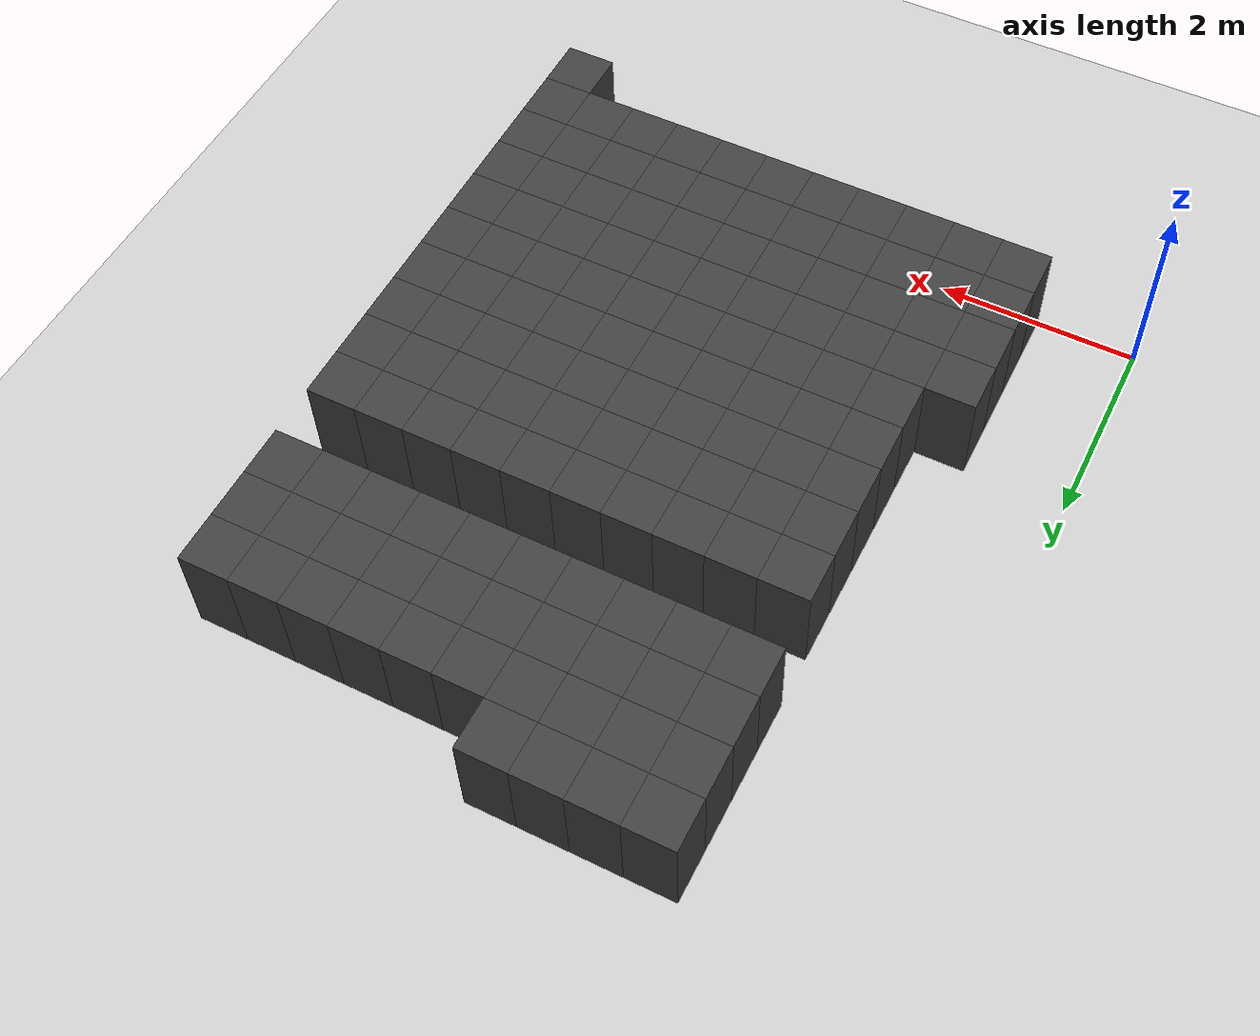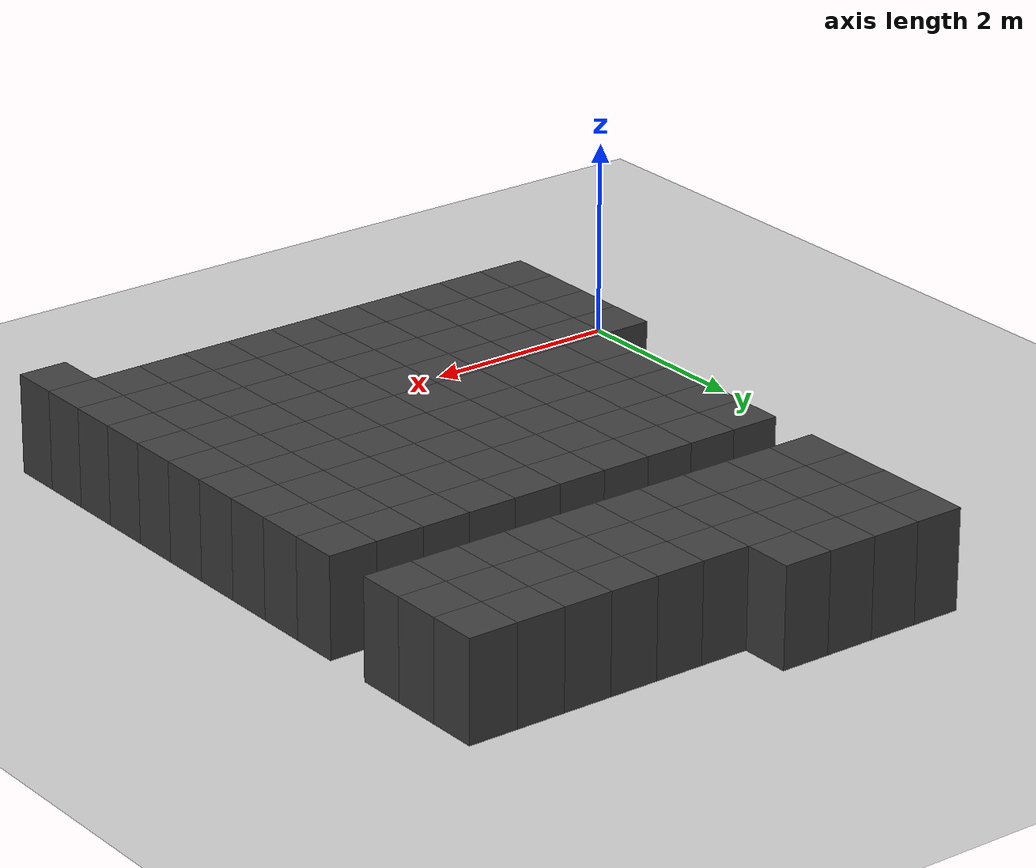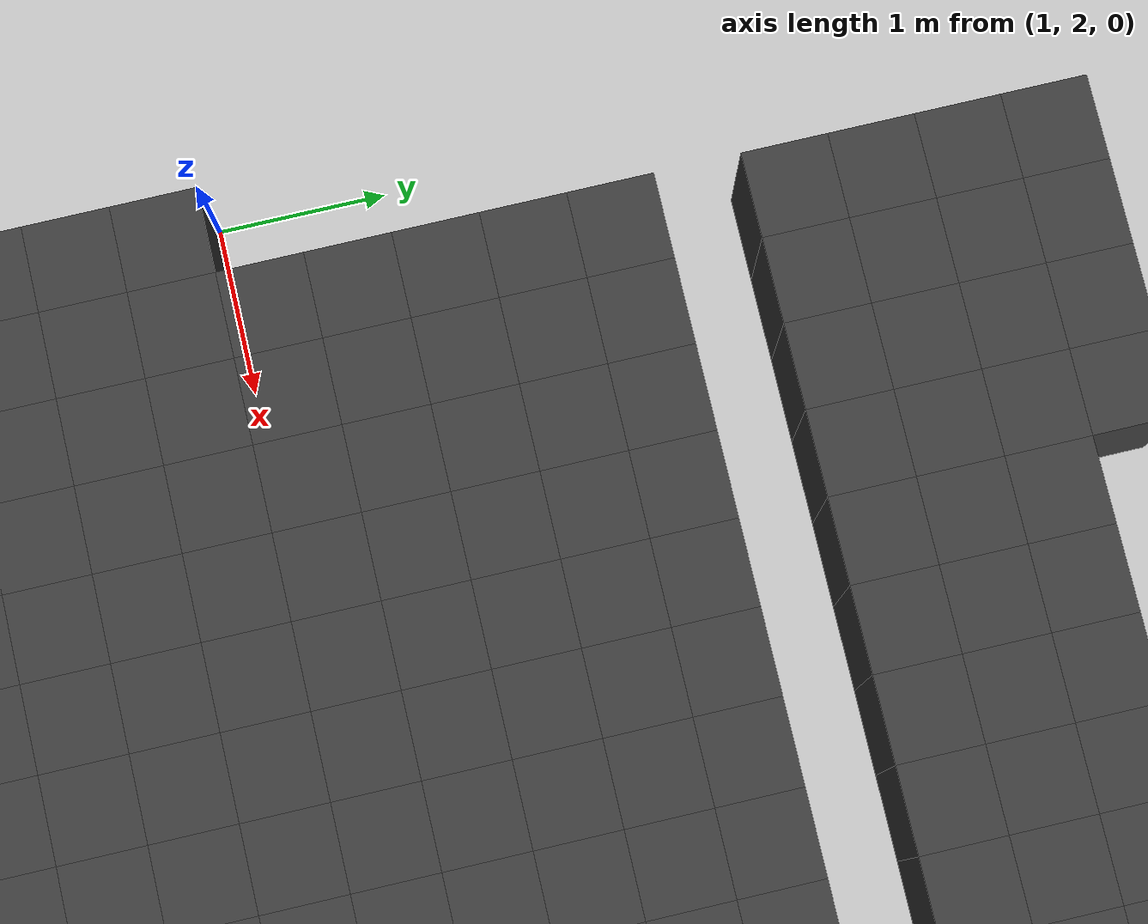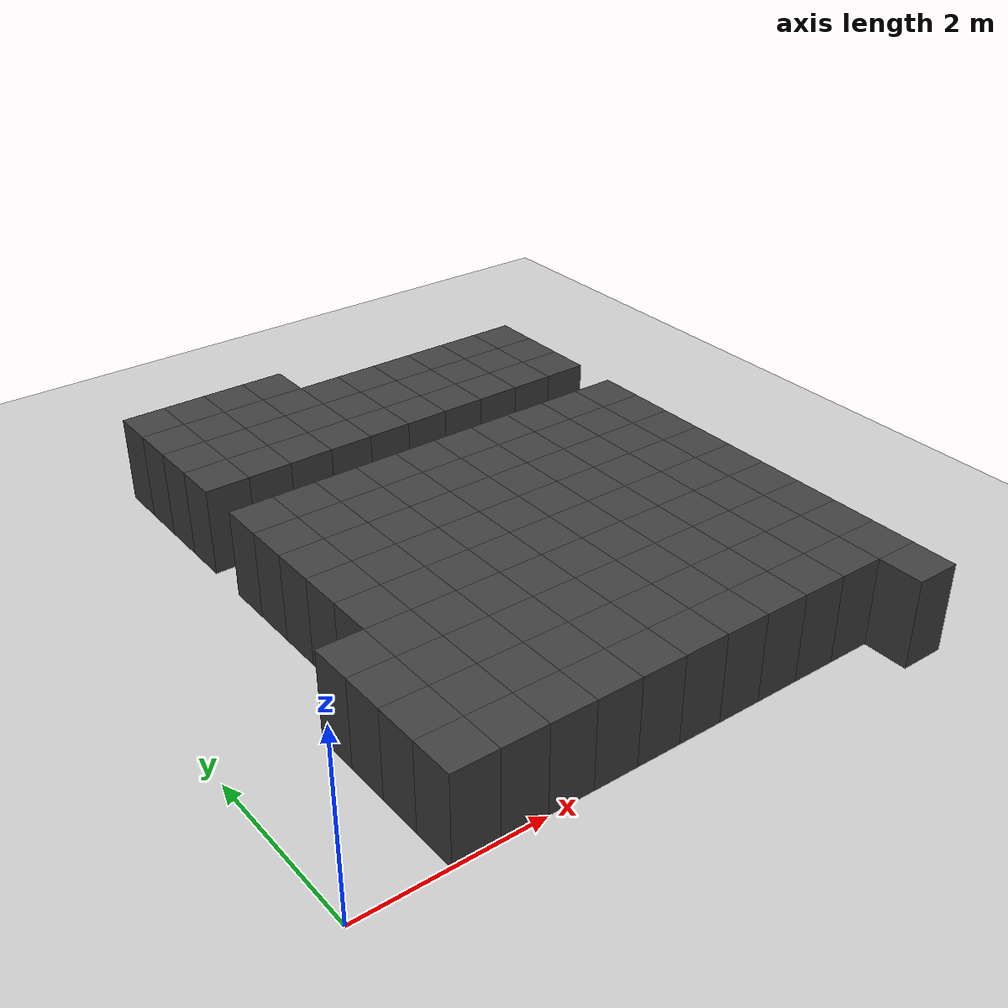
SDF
<sdf version="1.7">
 <world name="map_12356">
  <model name="ground_plane">
   <static>true</static>
   <link name="link">
    <collision name="collision">
     <geometry><plane><normal>0 0 1</normal><size>200 200</size></plane></geometry>
    </collision>
    <visual name="visual">
     <geometry><plane><normal>0 0 1</normal><size>200 200</size></plane></geometry>
     <material><ambient>0.8 0.8 0.8 1</ambient><diffuse>0.8 0.8 0.8 1</diffuse></material>
    </visual>
   </link>
  </model>
  <model name="maze_environment">
   <static>true</static>
   <link name="wall_408">
    <pose>1.750 6.750 0.500 0 0 0</pose>
    <collision name="col"><geometry><box><size>0.5 0.5 1.0</size></box></geometry></collision>
    <visual name="vis">
     <geometry><box><size>0.5 0.5 1.0</size></box></geometry>
     <material><ambient>0.15 0.15 0.15 1</ambient><diffuse>0.25 0.25 0.25 1</diffuse></material>
    </visual>
   </link>
   <link name="wall_409">
    <pose>2.250 6.750 0.500 0 0 0</pose>
    <collision name="col"><geometry><box><size>0.5 0.5 1.0</size></box></geometry></collision>
    <visual name="vis">
     <geometry><box><size>0.5 0.5 1.0</size></box></geometry>
     <material><ambient>0.15 0.15 0.15 1</ambient><diffuse>0.25 0.25 0.25 1</diffuse></material>
    </visual>
   </link>
   <link name="wall_410">
    <pose>2.750 6.750 0.500 0 0 0</pose>
    <collision name="col"><geometry><box><size>0.5 0.5 1.0</size></box></geometry></collision>
    <visual name="vis">
     <geometry><box><size>0.5 0.5 1.0</size></box></geometry>
     <material><ambient>0.15 0.15 0.15 1</ambient><diffuse>0.25 0.25 0.25 1</diffuse></material>
    </visual>
   </link>
   <link name="wall_411">
    <pose>3.250 6.750 0.500 0 0 0</pose>
    <collision name="col"><geometry><box><size>0.5 0.5 1.0</size></box></geometry></collision>
    <visual name="vis">
     <geometry><box><size>0.5 0.5 1.0</size></box></geometry>
     <material><ambient>0.15 0.15 0.15 1</ambient><diffuse>0.25 0.25 0.25 1</diffuse></material>
    </visual>
   </link>
   <link name="wall_452">
    <pose>1.750 6.250 0.500 0 0 0</pose>
    <collision name="col"><geometry><box><size>0.5 0.5 1.0</size></box></geometry></collision>
    <visual name="vis">
     <geometry><box><size>0.5 0.5 1.0</size></box></geometry>
     <material><ambient>0.15 0.15 0.15 1</ambient><diffuse>0.25 0.25 0.25 1</diffuse></material>
    </visual>
   </link>
   <link name="wall_453">
    <pose>2.250 6.250 0.500 0 0 0</pose>
    <collision name="col"><geometry><box><size>0.5 0.5 1.0</size></box></geometry></collision>
    <visual name="vis">
     <geometry><box><size>0.5 0.5 1.0</size></box></geometry>
     <material><ambient>0.15 0.15 0.15 1</ambient><diffuse>0.25 0.25 0.25 1</diffuse></material>
    </visual>
   </link>
   <link name="wall_454">
    <pose>2.750 6.250 0.500 0 0 0</pose>
    <collision name="col"><geometry><box><size>0.5 0.5 1.0</size></box></geometry></collision>
    <visual name="vis">
     <geometry><box><size>0.5 0.5 1.0</size></box></geometry>
     <material><ambient>0.15 0.15 0.15 1</ambient><diffuse>0.25 0.25 0.25 1</diffuse></material>
    </visual>
   </link>
   <link name="wall_455">
    <pose>3.250 6.250 0.500 0 0 0</pose>
    <collision name="col"><geometry><box><size>0.5 0.5 1.0</size></box></geometry></collision>
    <visual name="vis">
     <geometry><box><size>0.5 0.5 1.0</size></box></geometry>
     <material><ambient>0.15 0.15 0.15 1</ambient><diffuse>0.25 0.25 0.25 1</diffuse></material>
    </visual>
   </link>
   <link name="wall_456">
    <pose>3.750 6.250 0.500 0 0 0</pose>
    <collision name="col"><geometry><box><size>0.5 0.5 1.0</size></box></geometry></collision>
    <visual name="vis">
     <geometry><box><size>0.5 0.5 1.0</size></box></geometry>
     <material><ambient>0.15 0.15 0.15 1</ambient><diffuse>0.25 0.25 0.25 1</diffuse></material>
    </visual>
   </link>
   <link name="wall_457">
    <pose>4.250 6.250 0.500 0 0 0</pose>
    <collision name="col"><geometry><box><size>0.5 0.5 1.0</size></box></geometry></collision>
    <visual name="vis">
     <geometry><box><size>0.5 0.5 1.0</size></box></geometry>
     <material><ambient>0.15 0.15 0.15 1</ambient><diffuse>0.25 0.25 0.25 1</diffuse></material>
    </visual>
   </link>
   <link name="wall_458">
    <pose>4.750 6.250 0.500 0 0 0</pose>
    <collision name="col"><geometry><box><size>0.5 0.5 1.0</size></box></geometry></collision>
    <visual name="vis">
     <geometry><box><size>0.5 0.5 1.0</size></box></geometry>
     <material><ambient>0.15 0.15 0.15 1</ambient><diffuse>0.25 0.25 0.25 1</diffuse></material>
    </visual>
   </link>
   <link name="wall_459">
    <pose>5.250 6.250 0.500 0 0 0</pose>
    <collision name="col"><geometry><box><size>0.5 0.5 1.0</size></box></geometry></collision>
    <visual name="vis">
     <geometry><box><size>0.5 0.5 1.0</size></box></geometry>
     <material><ambient>0.15 0.15 0.15 1</ambient><diffuse>0.25 0.25 0.25 1</diffuse></material>
    </visual>
   </link>
   <link name="wall_460">
    <pose>5.750 6.250 0.500 0 0 0</pose>
    <collision name="col"><geometry><box><size>0.5 0.5 1.0</size></box></geometry></collision>
    <visual name="vis">
     <geometry><box><size>0.5 0.5 1.0</size></box></geometry>
     <material><ambient>0.15 0.15 0.15 1</ambient><diffuse>0.25 0.25 0.25 1</diffuse></material>
    </visual>
   </link>
   <link name="wall_461">
    <pose>6.250 6.250 0.500 0 0 0</pose>
    <collision name="col"><geometry><box><size>0.5 0.5 1.0</size></box></geometry></collision>
    <visual name="vis">
     <geometry><box><size>0.5 0.5 1.0</size></box></geometry>
     <material><ambient>0.15 0.15 0.15 1</ambient><diffuse>0.25 0.25 0.25 1</diffuse></material>
    </visual>
   </link>
   <link name="wall_496">
    <pose>1.750 5.750 0.500 0 0 0</pose>
    <collision name="col"><geometry><box><size>0.5 0.5 1.0</size></box></geometry></collision>
    <visual name="vis">
     <geometry><box><size>0.5 0.5 1.0</size></box></geometry>
     <material><ambient>0.15 0.15 0.15 1</ambient><diffuse>0.25 0.25 0.25 1</diffuse></material>
    </visual>
   </link>
   <link name="wall_497">
    <pose>2.250 5.750 0.500 0 0 0</pose>
    <collision name="col"><geometry><box><size>0.5 0.5 1.0</size></box></geometry></collision>
    <visual name="vis">
     <geometry><box><size>0.5 0.5 1.0</size></box></geometry>
     <material><ambient>0.15 0.15 0.15 1</ambient><diffuse>0.25 0.25 0.25 1</diffuse></material>
    </visual>
   </link>
   <link name="wall_498">
    <pose>2.750 5.750 0.500 0 0 0</pose>
    <collision name="col"><geometry><box><size>0.5 0.5 1.0</size></box></geometry></collision>
    <visual name="vis">
     <geometry><box><size>0.5 0.5 1.0</size></box></geometry>
     <material><ambient>0.15 0.15 0.15 1</ambient><diffuse>0.25 0.25 0.25 1</diffuse></material>
    </visual>
   </link>
   <link name="wall_499">
    <pose>3.250 5.750 0.500 0 0 0</pose>
    <collision name="col"><geometry><box><size>0.5 0.5 1.0</size></box></geometry></collision>
    <visual name="vis">
     <geometry><box><size>0.5 0.5 1.0</size></box></geometry>
     <material><ambient>0.15 0.15 0.15 1</ambient><diffuse>0.25 0.25 0.25 1</diffuse></material>
    </visual>
   </link>
   <link name="wall_500">
    <pose>3.750 5.750 0.500 0 0 0</pose>
    <collision name="col"><geometry><box><size>0.5 0.5 1.0</size></box></geometry></collision>
    <visual name="vis">
     <geometry><box><size>0.5 0.5 1.0</size></box></geometry>
     <material><ambient>0.15 0.15 0.15 1</ambient><diffuse>0.25 0.25 0.25 1</diffuse></material>
    </visual>
   </link>
   <link name="wall_501">
    <pose>4.250 5.750 0.500 0 0 0</pose>
    <collision name="col"><geometry><box><size>0.5 0.5 1.0</size></box></geometry></collision>
    <visual name="vis">
     <geometry><box><size>0.5 0.5 1.0</size></box></geometry>
     <material><ambient>0.15 0.15 0.15 1</ambient><diffuse>0.25 0.25 0.25 1</diffuse></material>
    </visual>
   </link>
   <link name="wall_502">
    <pose>4.750 5.750 0.500 0 0 0</pose>
    <collision name="col"><geometry><box><size>0.5 0.5 1.0</size></box></geometry></collision>
    <visual name="vis">
     <geometry><box><size>0.5 0.5 1.0</size></box></geometry>
     <material><ambient>0.15 0.15 0.15 1</ambient><diffuse>0.25 0.25 0.25 1</diffuse></material>
    </visual>
   </link>
   <link name="wall_503">
    <pose>5.250 5.750 0.500 0 0 0</pose>
    <collision name="col"><geometry><box><size>0.5 0.5 1.0</size></box></geometry></collision>
    <visual name="vis">
     <geometry><box><size>0.5 0.5 1.0</size></box></geometry>
     <material><ambient>0.15 0.15 0.15 1</ambient><diffuse>0.25 0.25 0.25 1</diffuse></material>
    </visual>
   </link>
   <link name="wall_504">
    <pose>5.750 5.750 0.500 0 0 0</pose>
    <collision name="col"><geometry><box><size>0.5 0.5 1.0</size></box></geometry></collision>
    <visual name="vis">
     <geometry><box><size>0.5 0.5 1.0</size></box></geometry>
     <material><ambient>0.15 0.15 0.15 1</ambient><diffuse>0.25 0.25 0.25 1</diffuse></material>
    </visual>
   </link>
   <link name="wall_505">
    <pose>6.250 5.750 0.500 0 0 0</pose>
    <collision name="col"><geometry><box><size>0.5 0.5 1.0</size></box></geometry></collision>
    <visual name="vis">
     <geometry><box><size>0.5 0.5 1.0</size></box></geometry>
     <material><ambient>0.15 0.15 0.15 1</ambient><diffuse>0.25 0.25 0.25 1</diffuse></material>
    </visual>
   </link>
   <link name="wall_540">
    <pose>1.750 5.250 0.500 0 0 0</pose>
    <collision name="col"><geometry><box><size>0.5 0.5 1.0</size></box></geometry></collision>
    <visual name="vis">
     <geometry><box><size>0.5 0.5 1.0</size></box></geometry>
     <material><ambient>0.15 0.15 0.15 1</ambient><diffuse>0.25 0.25 0.25 1</diffuse></material>
    </visual>
   </link>
   <link name="wall_541">
    <pose>2.250 5.250 0.500 0 0 0</pose>
    <collision name="col"><geometry><box><size>0.5 0.5 1.0</size></box></geometry></collision>
    <visual name="vis">
     <geometry><box><size>0.5 0.5 1.0</size></box></geometry>
     <material><ambient>0.15 0.15 0.15 1</ambient><diffuse>0.25 0.25 0.25 1</diffuse></material>
    </visual>
   </link>
   <link name="wall_542">
    <pose>2.750 5.250 0.500 0 0 0</pose>
    <collision name="col"><geometry><box><size>0.5 0.5 1.0</size></box></geometry></collision>
    <visual name="vis">
     <geometry><box><size>0.5 0.5 1.0</size></box></geometry>
     <material><ambient>0.15 0.15 0.15 1</ambient><diffuse>0.25 0.25 0.25 1</diffuse></material>
    </visual>
   </link>
   <link name="wall_543">
    <pose>3.250 5.250 0.500 0 0 0</pose>
    <collision name="col"><geometry><box><size>0.5 0.5 1.0</size></box></geometry></collision>
    <visual name="vis">
     <geometry><box><size>0.5 0.5 1.0</size></box></geometry>
     <material><ambient>0.15 0.15 0.15 1</ambient><diffuse>0.25 0.25 0.25 1</diffuse></material>
    </visual>
   </link>
   <link name="wall_544">
    <pose>3.750 5.250 0.500 0 0 0</pose>
    <collision name="col"><geometry><box><size>0.5 0.5 1.0</size></box></geometry></collision>
    <visual name="vis">
     <geometry><box><size>0.5 0.5 1.0</size></box></geometry>
     <material><ambient>0.15 0.15 0.15 1</ambient><diffuse>0.25 0.25 0.25 1</diffuse></material>
    </visual>
   </link>
   <link name="wall_545">
    <pose>4.250 5.250 0.500 0 0 0</pose>
    <collision name="col"><geometry><box><size>0.5 0.5 1.0</size></box></geometry></collision>
    <visual name="vis">
     <geometry><box><size>0.5 0.5 1.0</size></box></geometry>
     <material><ambient>0.15 0.15 0.15 1</ambient><diffuse>0.25 0.25 0.25 1</diffuse></material>
    </visual>
   </link>
   <link name="wall_546">
    <pose>4.750 5.250 0.500 0 0 0</pose>
    <collision name="col"><geometry><box><size>0.5 0.5 1.0</size></box></geometry></collision>
    <visual name="vis">
     <geometry><box><size>0.5 0.5 1.0</size></box></geometry>
     <material><ambient>0.15 0.15 0.15 1</ambient><diffuse>0.25 0.25 0.25 1</diffuse></material>
    </visual>
   </link>
   <link name="wall_547">
    <pose>5.250 5.250 0.500 0 0 0</pose>
    <collision name="col"><geometry><box><size>0.5 0.5 1.0</size></box></geometry></collision>
    <visual name="vis">
     <geometry><box><size>0.5 0.5 1.0</size></box></geometry>
     <material><ambient>0.15 0.15 0.15 1</ambient><diffuse>0.25 0.25 0.25 1</diffuse></material>
    </visual>
   </link>
   <link name="wall_548">
    <pose>5.750 5.250 0.500 0 0 0</pose>
    <collision name="col"><geometry><box><size>0.5 0.5 1.0</size></box></geometry></collision>
    <visual name="vis">
     <geometry><box><size>0.5 0.5 1.0</size></box></geometry>
     <material><ambient>0.15 0.15 0.15 1</ambient><diffuse>0.25 0.25 0.25 1</diffuse></material>
    </visual>
   </link>
   <link name="wall_549">
    <pose>6.250 5.250 0.500 0 0 0</pose>
    <collision name="col"><geometry><box><size>0.5 0.5 1.0</size></box></geometry></collision>
    <visual name="vis">
     <geometry><box><size>0.5 0.5 1.0</size></box></geometry>
     <material><ambient>0.15 0.15 0.15 1</ambient><diffuse>0.25 0.25 0.25 1</diffuse></material>
    </visual>
   </link>
   <link name="wall_605">
    <pose>1.750 4.250 0.500 0 0 0</pose>
    <collision name="col"><geometry><box><size>0.5 0.5 1.0</size></box></geometry></collision>
    <visual name="vis">
     <geometry><box><size>0.5 0.5 1.0</size></box></geometry>
     <material><ambient>0.15 0.15 0.15 1</ambient><diffuse>0.25 0.25 0.25 1</diffuse></material>
    </visual>
   </link>
   <link name="wall_606">
    <pose>2.250 4.250 0.500 0 0 0</pose>
    <collision name="col"><geometry><box><size>0.5 0.5 1.0</size></box></geometry></collision>
    <visual name="vis">
     <geometry><box><size>0.5 0.5 1.0</size></box></geometry>
     <material><ambient>0.15 0.15 0.15 1</ambient><diffuse>0.25 0.25 0.25 1</diffuse></material>
    </visual>
   </link>
   <link name="wall_607">
    <pose>2.750 4.250 0.500 0 0 0</pose>
    <collision name="col"><geometry><box><size>0.5 0.5 1.0</size></box></geometry></collision>
    <visual name="vis">
     <geometry><box><size>0.5 0.5 1.0</size></box></geometry>
     <material><ambient>0.15 0.15 0.15 1</ambient><diffuse>0.25 0.25 0.25 1</diffuse></material>
    </visual>
   </link>
   <link name="wall_608">
    <pose>3.250 4.250 0.500 0 0 0</pose>
    <collision name="col"><geometry><box><size>0.5 0.5 1.0</size></box></geometry></collision>
    <visual name="vis">
     <geometry><box><size>0.5 0.5 1.0</size></box></geometry>
     <material><ambient>0.15 0.15 0.15 1</ambient><diffuse>0.25 0.25 0.25 1</diffuse></material>
    </visual>
   </link>
   <link name="wall_609">
    <pose>3.750 4.250 0.500 0 0 0</pose>
    <collision name="col"><geometry><box><size>0.5 0.5 1.0</size></box></geometry></collision>
    <visual name="vis">
     <geometry><box><size>0.5 0.5 1.0</size></box></geometry>
     <material><ambient>0.15 0.15 0.15 1</ambient><diffuse>0.25 0.25 0.25 1</diffuse></material>
    </visual>
   </link>
   <link name="wall_610">
    <pose>4.250 4.250 0.500 0 0 0</pose>
    <collision name="col"><geometry><box><size>0.5 0.5 1.0</size></box></geometry></collision>
    <visual name="vis">
     <geometry><box><size>0.5 0.5 1.0</size></box></geometry>
     <material><ambient>0.15 0.15 0.15 1</ambient><diffuse>0.25 0.25 0.25 1</diffuse></material>
    </visual>
   </link>
   <link name="wall_611">
    <pose>4.750 4.250 0.500 0 0 0</pose>
    <collision name="col"><geometry><box><size>0.5 0.5 1.0</size></box></geometry></collision>
    <visual name="vis">
     <geometry><box><size>0.5 0.5 1.0</size></box></geometry>
     <material><ambient>0.15 0.15 0.15 1</ambient><diffuse>0.25 0.25 0.25 1</diffuse></material>
    </visual>
   </link>
   <link name="wall_612">
    <pose>5.250 4.250 0.500 0 0 0</pose>
    <collision name="col"><geometry><box><size>0.5 0.5 1.0</size></box></geometry></collision>
    <visual name="vis">
     <geometry><box><size>0.5 0.5 1.0</size></box></geometry>
     <material><ambient>0.15 0.15 0.15 1</ambient><diffuse>0.25 0.25 0.25 1</diffuse></material>
    </visual>
   </link>
   <link name="wall_613">
    <pose>5.750 4.250 0.500 0 0 0</pose>
    <collision name="col"><geometry><box><size>0.5 0.5 1.0</size></box></geometry></collision>
    <visual name="vis">
     <geometry><box><size>0.5 0.5 1.0</size></box></geometry>
     <material><ambient>0.15 0.15 0.15 1</ambient><diffuse>0.25 0.25 0.25 1</diffuse></material>
    </visual>
   </link>
   <link name="wall_614">
    <pose>6.250 4.250 0.500 0 0 0</pose>
    <collision name="col"><geometry><box><size>0.5 0.5 1.0</size></box></geometry></collision>
    <visual name="vis">
     <geometry><box><size>0.5 0.5 1.0</size></box></geometry>
     <material><ambient>0.15 0.15 0.15 1</ambient><diffuse>0.25 0.25 0.25 1</diffuse></material>
    </visual>
   </link>
   <link name="wall_644">
    <pose>1.750 3.750 0.500 0 0 0</pose>
    <collision name="col"><geometry><box><size>0.5 0.5 1.0</size></box></geometry></collision>
    <visual name="vis">
     <geometry><box><size>0.5 0.5 1.0</size></box></geometry>
     <material><ambient>0.15 0.15 0.15 1</ambient><diffuse>0.25 0.25 0.25 1</diffuse></material>
    </visual>
   </link>
   <link name="wall_645">
    <pose>2.250 3.750 0.500 0 0 0</pose>
    <collision name="col"><geometry><box><size>0.5 0.5 1.0</size></box></geometry></collision>
    <visual name="vis">
     <geometry><box><size>0.5 0.5 1.0</size></box></geometry>
     <material><ambient>0.15 0.15 0.15 1</ambient><diffuse>0.25 0.25 0.25 1</diffuse></material>
    </visual>
   </link>
   <link name="wall_646">
    <pose>2.750 3.750 0.500 0 0 0</pose>
    <collision name="col"><geometry><box><size>0.5 0.5 1.0</size></box></geometry></collision>
    <visual name="vis">
     <geometry><box><size>0.5 0.5 1.0</size></box></geometry>
     <material><ambient>0.15 0.15 0.15 1</ambient><diffuse>0.25 0.25 0.25 1</diffuse></material>
    </visual>
   </link>
   <link name="wall_647">
    <pose>3.250 3.750 0.500 0 0 0</pose>
    <collision name="col"><geometry><box><size>0.5 0.5 1.0</size></box></geometry></collision>
    <visual name="vis">
     <geometry><box><size>0.5 0.5 1.0</size></box></geometry>
     <material><ambient>0.15 0.15 0.15 1</ambient><diffuse>0.25 0.25 0.25 1</diffuse></material>
    </visual>
   </link>
   <link name="wall_648">
    <pose>3.750 3.750 0.500 0 0 0</pose>
    <collision name="col"><geometry><box><size>0.5 0.5 1.0</size></box></geometry></collision>
    <visual name="vis">
     <geometry><box><size>0.5 0.5 1.0</size></box></geometry>
     <material><ambient>0.15 0.15 0.15 1</ambient><diffuse>0.25 0.25 0.25 1</diffuse></material>
    </visual>
   </link>
   <link name="wall_649">
    <pose>4.250 3.750 0.500 0 0 0</pose>
    <collision name="col"><geometry><box><size>0.5 0.5 1.0</size></box></geometry></collision>
    <visual name="vis">
     <geometry><box><size>0.5 0.5 1.0</size></box></geometry>
     <material><ambient>0.15 0.15 0.15 1</ambient><diffuse>0.25 0.25 0.25 1</diffuse></material>
    </visual>
   </link>
   <link name="wall_650">
    <pose>4.750 3.750 0.500 0 0 0</pose>
    <collision name="col"><geometry><box><size>0.5 0.5 1.0</size></box></geometry></collision>
    <visual name="vis">
     <geometry><box><size>0.5 0.5 1.0</size></box></geometry>
     <material><ambient>0.15 0.15 0.15 1</ambient><diffuse>0.25 0.25 0.25 1</diffuse></material>
    </visual>
   </link>
   <link name="wall_651">
    <pose>5.250 3.750 0.500 0 0 0</pose>
    <collision name="col"><geometry><box><size>0.5 0.5 1.0</size></box></geometry></collision>
    <visual name="vis">
     <geometry><box><size>0.5 0.5 1.0</size></box></geometry>
     <material><ambient>0.15 0.15 0.15 1</ambient><diffuse>0.25 0.25 0.25 1</diffuse></material>
    </visual>
   </link>
   <link name="wall_652">
    <pose>5.750 3.750 0.500 0 0 0</pose>
    <collision name="col"><geometry><box><size>0.5 0.5 1.0</size></box></geometry></collision>
    <visual name="vis">
     <geometry><box><size>0.5 0.5 1.0</size></box></geometry>
     <material><ambient>0.15 0.15 0.15 1</ambient><diffuse>0.25 0.25 0.25 1</diffuse></material>
    </visual>
   </link>
   <link name="wall_653">
    <pose>6.250 3.750 0.500 0 0 0</pose>
    <collision name="col"><geometry><box><size>0.5 0.5 1.0</size></box></geometry></collision>
    <visual name="vis">
     <geometry><box><size>0.5 0.5 1.0</size></box></geometry>
     <material><ambient>0.15 0.15 0.15 1</ambient><diffuse>0.25 0.25 0.25 1</diffuse></material>
    </visual>
   </link>
   <link name="wall_683">
    <pose>1.750 3.250 0.500 0 0 0</pose>
    <collision name="col"><geometry><box><size>0.5 0.5 1.0</size></box></geometry></collision>
    <visual name="vis">
     <geometry><box><size>0.5 0.5 1.0</size></box></geometry>
     <material><ambient>0.15 0.15 0.15 1</ambient><diffuse>0.25 0.25 0.25 1</diffuse></material>
    </visual>
   </link>
   <link name="wall_684">
    <pose>2.250 3.250 0.500 0 0 0</pose>
    <collision name="col"><geometry><box><size>0.5 0.5 1.0</size></box></geometry></collision>
    <visual name="vis">
     <geometry><box><size>0.5 0.5 1.0</size></box></geometry>
     <material><ambient>0.15 0.15 0.15 1</ambient><diffuse>0.25 0.25 0.25 1</diffuse></material>
    </visual>
   </link>
   <link name="wall_685">
    <pose>2.750 3.250 0.500 0 0 0</pose>
    <collision name="col"><geometry><box><size>0.5 0.5 1.0</size></box></geometry></collision>
    <visual name="vis">
     <geometry><box><size>0.5 0.5 1.0</size></box></geometry>
     <material><ambient>0.15 0.15 0.15 1</ambient><diffuse>0.25 0.25 0.25 1</diffuse></material>
    </visual>
   </link>
   <link name="wall_686">
    <pose>3.250 3.250 0.500 0 0 0</pose>
    <collision name="col"><geometry><box><size>0.5 0.5 1.0</size></box></geometry></collision>
    <visual name="vis">
     <geometry><box><size>0.5 0.5 1.0</size></box></geometry>
     <material><ambient>0.15 0.15 0.15 1</ambient><diffuse>0.25 0.25 0.25 1</diffuse></material>
    </visual>
   </link>
   <link name="wall_687">
    <pose>3.750 3.250 0.500 0 0 0</pose>
    <collision name="col"><geometry><box><size>0.5 0.5 1.0</size></box></geometry></collision>
    <visual name="vis">
     <geometry><box><size>0.5 0.5 1.0</size></box></geometry>
     <material><ambient>0.15 0.15 0.15 1</ambient><diffuse>0.25 0.25 0.25 1</diffuse></material>
    </visual>
   </link>
   <link name="wall_688">
    <pose>4.250 3.250 0.500 0 0 0</pose>
    <collision name="col"><geometry><box><size>0.5 0.5 1.0</size></box></geometry></collision>
    <visual name="vis">
     <geometry><box><size>0.5 0.5 1.0</size></box></geometry>
     <material><ambient>0.15 0.15 0.15 1</ambient><diffuse>0.25 0.25 0.25 1</diffuse></material>
    </visual>
   </link>
   <link name="wall_689">
    <pose>4.750 3.250 0.500 0 0 0</pose>
    <collision name="col"><geometry><box><size>0.5 0.5 1.0</size></box></geometry></collision>
    <visual name="vis">
     <geometry><box><size>0.5 0.5 1.0</size></box></geometry>
     <material><ambient>0.15 0.15 0.15 1</ambient><diffuse>0.25 0.25 0.25 1</diffuse></material>
    </visual>
   </link>
   <link name="wall_690">
    <pose>5.250 3.250 0.500 0 0 0</pose>
    <collision name="col"><geometry><box><size>0.5 0.5 1.0</size></box></geometry></collision>
    <visual name="vis">
     <geometry><box><size>0.5 0.5 1.0</size></box></geometry>
     <material><ambient>0.15 0.15 0.15 1</ambient><diffuse>0.25 0.25 0.25 1</diffuse></material>
    </visual>
   </link>
   <link name="wall_691">
    <pose>5.750 3.250 0.500 0 0 0</pose>
    <collision name="col"><geometry><box><size>0.5 0.5 1.0</size></box></geometry></collision>
    <visual name="vis">
     <geometry><box><size>0.5 0.5 1.0</size></box></geometry>
     <material><ambient>0.15 0.15 0.15 1</ambient><diffuse>0.25 0.25 0.25 1</diffuse></material>
    </visual>
   </link>
   <link name="wall_692">
    <pose>6.250 3.250 0.500 0 0 0</pose>
    <collision name="col"><geometry><box><size>0.5 0.5 1.0</size></box></geometry></collision>
    <visual name="vis">
     <geometry><box><size>0.5 0.5 1.0</size></box></geometry>
     <material><ambient>0.15 0.15 0.15 1</ambient><diffuse>0.25 0.25 0.25 1</diffuse></material>
    </visual>
   </link>
   <link name="wall_722">
    <pose>1.750 2.750 0.500 0 0 0</pose>
    <collision name="col"><geometry><box><size>0.5 0.5 1.0</size></box></geometry></collision>
    <visual name="vis">
     <geometry><box><size>0.5 0.5 1.0</size></box></geometry>
     <material><ambient>0.15 0.15 0.15 1</ambient><diffuse>0.25 0.25 0.25 1</diffuse></material>
    </visual>
   </link>
   <link name="wall_723">
    <pose>2.250 2.750 0.500 0 0 0</pose>
    <collision name="col"><geometry><box><size>0.5 0.5 1.0</size></box></geometry></collision>
    <visual name="vis">
     <geometry><box><size>0.5 0.5 1.0</size></box></geometry>
     <material><ambient>0.15 0.15 0.15 1</ambient><diffuse>0.25 0.25 0.25 1</diffuse></material>
    </visual>
   </link>
   <link name="wall_724">
    <pose>2.750 2.750 0.500 0 0 0</pose>
    <collision name="col"><geometry><box><size>0.5 0.5 1.0</size></box></geometry></collision>
    <visual name="vis">
     <geometry><box><size>0.5 0.5 1.0</size></box></geometry>
     <material><ambient>0.15 0.15 0.15 1</ambient><diffuse>0.25 0.25 0.25 1</diffuse></material>
    </visual>
   </link>
   <link name="wall_725">
    <pose>3.250 2.750 0.500 0 0 0</pose>
    <collision name="col"><geometry><box><size>0.5 0.5 1.0</size></box></geometry></collision>
    <visual name="vis">
     <geometry><box><size>0.5 0.5 1.0</size></box></geometry>
     <material><ambient>0.15 0.15 0.15 1</ambient><diffuse>0.25 0.25 0.25 1</diffuse></material>
    </visual>
   </link>
   <link name="wall_726">
    <pose>3.750 2.750 0.500 0 0 0</pose>
    <collision name="col"><geometry><box><size>0.5 0.5 1.0</size></box></geometry></collision>
    <visual name="vis">
     <geometry><box><size>0.5 0.5 1.0</size></box></geometry>
     <material><ambient>0.15 0.15 0.15 1</ambient><diffuse>0.25 0.25 0.25 1</diffuse></material>
    </visual>
   </link>
   <link name="wall_727">
    <pose>4.250 2.750 0.500 0 0 0</pose>
    <collision name="col"><geometry><box><size>0.5 0.5 1.0</size></box></geometry></collision>
    <visual name="vis">
     <geometry><box><size>0.5 0.5 1.0</size></box></geometry>
     <material><ambient>0.15 0.15 0.15 1</ambient><diffuse>0.25 0.25 0.25 1</diffuse></material>
    </visual>
   </link>
   <link name="wall_728">
    <pose>4.750 2.750 0.500 0 0 0</pose>
    <collision name="col"><geometry><box><size>0.5 0.5 1.0</size></box></geometry></collision>
    <visual name="vis">
     <geometry><box><size>0.5 0.5 1.0</size></box></geometry>
     <material><ambient>0.15 0.15 0.15 1</ambient><diffuse>0.25 0.25 0.25 1</diffuse></material>
    </visual>
   </link>
   <link name="wall_729">
    <pose>5.250 2.750 0.500 0 0 0</pose>
    <collision name="col"><geometry><box><size>0.5 0.5 1.0</size></box></geometry></collision>
    <visual name="vis">
     <geometry><box><size>0.5 0.5 1.0</size></box></geometry>
     <material><ambient>0.15 0.15 0.15 1</ambient><diffuse>0.25 0.25 0.25 1</diffuse></material>
    </visual>
   </link>
   <link name="wall_730">
    <pose>5.750 2.750 0.500 0 0 0</pose>
    <collision name="col"><geometry><box><size>0.5 0.5 1.0</size></box></geometry></collision>
    <visual name="vis">
     <geometry><box><size>0.5 0.5 1.0</size></box></geometry>
     <material><ambient>0.15 0.15 0.15 1</ambient><diffuse>0.25 0.25 0.25 1</diffuse></material>
    </visual>
   </link>
   <link name="wall_731">
    <pose>6.250 2.750 0.500 0 0 0</pose>
    <collision name="col"><geometry><box><size>0.5 0.5 1.0</size></box></geometry></collision>
    <visual name="vis">
     <geometry><box><size>0.5 0.5 1.0</size></box></geometry>
     <material><ambient>0.15 0.15 0.15 1</ambient><diffuse>0.25 0.25 0.25 1</diffuse></material>
    </visual>
   </link>
   <link name="wall_764">
    <pose>1.750 2.250 0.500 0 0 0</pose>
    <collision name="col"><geometry><box><size>0.5 0.5 1.0</size></box></geometry></collision>
    <visual name="vis">
     <geometry><box><size>0.5 0.5 1.0</size></box></geometry>
     <material><ambient>0.15 0.15 0.15 1</ambient><diffuse>0.25 0.25 0.25 1</diffuse></material>
    </visual>
   </link>
   <link name="wall_765">
    <pose>2.250 2.250 0.500 0 0 0</pose>
    <collision name="col"><geometry><box><size>0.5 0.5 1.0</size></box></geometry></collision>
    <visual name="vis">
     <geometry><box><size>0.5 0.5 1.0</size></box></geometry>
     <material><ambient>0.15 0.15 0.15 1</ambient><diffuse>0.25 0.25 0.25 1</diffuse></material>
    </visual>
   </link>
   <link name="wall_766">
    <pose>2.750 2.250 0.500 0 0 0</pose>
    <collision name="col"><geometry><box><size>0.5 0.5 1.0</size></box></geometry></collision>
    <visual name="vis">
     <geometry><box><size>0.5 0.5 1.0</size></box></geometry>
     <material><ambient>0.15 0.15 0.15 1</ambient><diffuse>0.25 0.25 0.25 1</diffuse></material>
    </visual>
   </link>
   <link name="wall_767">
    <pose>3.250 2.250 0.500 0 0 0</pose>
    <collision name="col"><geometry><box><size>0.5 0.5 1.0</size></box></geometry></collision>
    <visual name="vis">
     <geometry><box><size>0.5 0.5 1.0</size></box></geometry>
     <material><ambient>0.15 0.15 0.15 1</ambient><diffuse>0.25 0.25 0.25 1</diffuse></material>
    </visual>
   </link>
   <link name="wall_768">
    <pose>3.750 2.250 0.500 0 0 0</pose>
    <collision name="col"><geometry><box><size>0.5 0.5 1.0</size></box></geometry></collision>
    <visual name="vis">
     <geometry><box><size>0.5 0.5 1.0</size></box></geometry>
     <material><ambient>0.15 0.15 0.15 1</ambient><diffuse>0.25 0.25 0.25 1</diffuse></material>
    </visual>
   </link>
   <link name="wall_769">
    <pose>4.250 2.250 0.500 0 0 0</pose>
    <collision name="col"><geometry><box><size>0.5 0.5 1.0</size></box></geometry></collision>
    <visual name="vis">
     <geometry><box><size>0.5 0.5 1.0</size></box></geometry>
     <material><ambient>0.15 0.15 0.15 1</ambient><diffuse>0.25 0.25 0.25 1</diffuse></material>
    </visual>
   </link>
   <link name="wall_770">
    <pose>4.750 2.250 0.500 0 0 0</pose>
    <collision name="col"><geometry><box><size>0.5 0.5 1.0</size></box></geometry></collision>
    <visual name="vis">
     <geometry><box><size>0.5 0.5 1.0</size></box></geometry>
     <material><ambient>0.15 0.15 0.15 1</ambient><diffuse>0.25 0.25 0.25 1</diffuse></material>
    </visual>
   </link>
   <link name="wall_771">
    <pose>5.250 2.250 0.500 0 0 0</pose>
    <collision name="col"><geometry><box><size>0.5 0.5 1.0</size></box></geometry></collision>
    <visual name="vis">
     <geometry><box><size>0.5 0.5 1.0</size></box></geometry>
     <material><ambient>0.15 0.15 0.15 1</ambient><diffuse>0.25 0.25 0.25 1</diffuse></material>
    </visual>
   </link>
   <link name="wall_772">
    <pose>5.750 2.250 0.500 0 0 0</pose>
    <collision name="col"><geometry><box><size>0.5 0.5 1.0</size></box></geometry></collision>
    <visual name="vis">
     <geometry><box><size>0.5 0.5 1.0</size></box></geometry>
     <material><ambient>0.15 0.15 0.15 1</ambient><diffuse>0.25 0.25 0.25 1</diffuse></material>
    </visual>
   </link>
   <link name="wall_773">
    <pose>6.250 2.250 0.500 0 0 0</pose>
    <collision name="col"><geometry><box><size>0.5 0.5 1.0</size></box></geometry></collision>
    <visual name="vis">
     <geometry><box><size>0.5 0.5 1.0</size></box></geometry>
     <material><ambient>0.15 0.15 0.15 1</ambient><diffuse>0.25 0.25 0.25 1</diffuse></material>
    </visual>
   </link>
   <link name="wall_805">
    <pose>1.250 1.750 0.500 0 0 0</pose>
    <collision name="col"><geometry><box><size>0.5 0.5 1.0</size></box></geometry></collision>
    <visual name="vis">
     <geometry><box><size>0.5 0.5 1.0</size></box></geometry>
     <material><ambient>0.15 0.15 0.15 1</ambient><diffuse>0.25 0.25 0.25 1</diffuse></material>
    </visual>
   </link>
   <link name="wall_806">
    <pose>1.750 1.750 0.500 0 0 0</pose>
    <collision name="col"><geometry><box><size>0.5 0.5 1.0</size></box></geometry></collision>
    <visual name="vis">
     <geometry><box><size>0.5 0.5 1.0</size></box></geometry>
     <material><ambient>0.15 0.15 0.15 1</ambient><diffuse>0.25 0.25 0.25 1</diffuse></material>
    </visual>
   </link>
   <link name="wall_807">
    <pose>2.250 1.750 0.500 0 0 0</pose>
    <collision name="col"><geometry><box><size>0.5 0.5 1.0</size></box></geometry></collision>
    <visual name="vis">
     <geometry><box><size>0.5 0.5 1.0</size></box></geometry>
     <material><ambient>0.15 0.15 0.15 1</ambient><diffuse>0.25 0.25 0.25 1</diffuse></material>
    </visual>
   </link>
   <link name="wall_808">
    <pose>2.750 1.750 0.500 0 0 0</pose>
    <collision name="col"><geometry><box><size>0.5 0.5 1.0</size></box></geometry></collision>
    <visual name="vis">
     <geometry><box><size>0.5 0.5 1.0</size></box></geometry>
     <material><ambient>0.15 0.15 0.15 1</ambient><diffuse>0.25 0.25 0.25 1</diffuse></material>
    </visual>
   </link>
   <link name="wall_809">
    <pose>3.250 1.750 0.500 0 0 0</pose>
    <collision name="col"><geometry><box><size>0.5 0.5 1.0</size></box></geometry></collision>
    <visual name="vis">
     <geometry><box><size>0.5 0.5 1.0</size></box></geometry>
     <material><ambient>0.15 0.15 0.15 1</ambient><diffuse>0.25 0.25 0.25 1</diffuse></material>
    </visual>
   </link>
   <link name="wall_810">
    <pose>3.750 1.750 0.500 0 0 0</pose>
    <collision name="col"><geometry><box><size>0.5 0.5 1.0</size></box></geometry></collision>
    <visual name="vis">
     <geometry><box><size>0.5 0.5 1.0</size></box></geometry>
     <material><ambient>0.15 0.15 0.15 1</ambient><diffuse>0.25 0.25 0.25 1</diffuse></material>
    </visual>
   </link>
   <link name="wall_811">
    <pose>4.250 1.750 0.500 0 0 0</pose>
    <collision name="col"><geometry><box><size>0.5 0.5 1.0</size></box></geometry></collision>
    <visual name="vis">
     <geometry><box><size>0.5 0.5 1.0</size></box></geometry>
     <material><ambient>0.15 0.15 0.15 1</ambient><diffuse>0.25 0.25 0.25 1</diffuse></material>
    </visual>
   </link>
   <link name="wall_812">
    <pose>4.750 1.750 0.500 0 0 0</pose>
    <collision name="col"><geometry><box><size>0.5 0.5 1.0</size></box></geometry></collision>
    <visual name="vis">
     <geometry><box><size>0.5 0.5 1.0</size></box></geometry>
     <material><ambient>0.15 0.15 0.15 1</ambient><diffuse>0.25 0.25 0.25 1</diffuse></material>
    </visual>
   </link>
   <link name="wall_813">
    <pose>5.250 1.750 0.500 0 0 0</pose>
    <collision name="col"><geometry><box><size>0.5 0.5 1.0</size></box></geometry></collision>
    <visual name="vis">
     <geometry><box><size>0.5 0.5 1.0</size></box></geometry>
     <material><ambient>0.15 0.15 0.15 1</ambient><diffuse>0.25 0.25 0.25 1</diffuse></material>
    </visual>
   </link>
   <link name="wall_814">
    <pose>5.750 1.750 0.500 0 0 0</pose>
    <collision name="col"><geometry><box><size>0.5 0.5 1.0</size></box></geometry></collision>
    <visual name="vis">
     <geometry><box><size>0.5 0.5 1.0</size></box></geometry>
     <material><ambient>0.15 0.15 0.15 1</ambient><diffuse>0.25 0.25 0.25 1</diffuse></material>
    </visual>
   </link>
   <link name="wall_815">
    <pose>6.250 1.750 0.500 0 0 0</pose>
    <collision name="col"><geometry><box><size>0.5 0.5 1.0</size></box></geometry></collision>
    <visual name="vis">
     <geometry><box><size>0.5 0.5 1.0</size></box></geometry>
     <material><ambient>0.15 0.15 0.15 1</ambient><diffuse>0.25 0.25 0.25 1</diffuse></material>
    </visual>
   </link>
   <link name="wall_847">
    <pose>1.250 1.250 0.500 0 0 0</pose>
    <collision name="col"><geometry><box><size>0.5 0.5 1.0</size></box></geometry></collision>
    <visual name="vis">
     <geometry><box><size>0.5 0.5 1.0</size></box></geometry>
     <material><ambient>0.15 0.15 0.15 1</ambient><diffuse>0.25 0.25 0.25 1</diffuse></material>
    </visual>
   </link>
   <link name="wall_848">
    <pose>1.750 1.250 0.500 0 0 0</pose>
    <collision name="col"><geometry><box><size>0.5 0.5 1.0</size></box></geometry></collision>
    <visual name="vis">
     <geometry><box><size>0.5 0.5 1.0</size></box></geometry>
     <material><ambient>0.15 0.15 0.15 1</ambient><diffuse>0.25 0.25 0.25 1</diffuse></material>
    </visual>
   </link>
   <link name="wall_849">
    <pose>2.250 1.250 0.500 0 0 0</pose>
    <collision name="col"><geometry><box><size>0.5 0.5 1.0</size></box></geometry></collision>
    <visual name="vis">
     <geometry><box><size>0.5 0.5 1.0</size></box></geometry>
     <material><ambient>0.15 0.15 0.15 1</ambient><diffuse>0.25 0.25 0.25 1</diffuse></material>
    </visual>
   </link>
   <link name="wall_850">
    <pose>2.750 1.250 0.500 0 0 0</pose>
    <collision name="col"><geometry><box><size>0.5 0.5 1.0</size></box></geometry></collision>
    <visual name="vis">
     <geometry><box><size>0.5 0.5 1.0</size></box></geometry>
     <material><ambient>0.15 0.15 0.15 1</ambient><diffuse>0.25 0.25 0.25 1</diffuse></material>
    </visual>
   </link>
   <link name="wall_851">
    <pose>3.250 1.250 0.500 0 0 0</pose>
    <collision name="col"><geometry><box><size>0.5 0.5 1.0</size></box></geometry></collision>
    <visual name="vis">
     <geometry><box><size>0.5 0.5 1.0</size></box></geometry>
     <material><ambient>0.15 0.15 0.15 1</ambient><diffuse>0.25 0.25 0.25 1</diffuse></material>
    </visual>
   </link>
   <link name="wall_852">
    <pose>3.750 1.250 0.500 0 0 0</pose>
    <collision name="col"><geometry><box><size>0.5 0.5 1.0</size></box></geometry></collision>
    <visual name="vis">
     <geometry><box><size>0.5 0.5 1.0</size></box></geometry>
     <material><ambient>0.15 0.15 0.15 1</ambient><diffuse>0.25 0.25 0.25 1</diffuse></material>
    </visual>
   </link>
   <link name="wall_853">
    <pose>4.250 1.250 0.500 0 0 0</pose>
    <collision name="col"><geometry><box><size>0.5 0.5 1.0</size></box></geometry></collision>
    <visual name="vis">
     <geometry><box><size>0.5 0.5 1.0</size></box></geometry>
     <material><ambient>0.15 0.15 0.15 1</ambient><diffuse>0.25 0.25 0.25 1</diffuse></material>
    </visual>
   </link>
   <link name="wall_854">
    <pose>4.750 1.250 0.500 0 0 0</pose>
    <collision name="col"><geometry><box><size>0.5 0.5 1.0</size></box></geometry></collision>
    <visual name="vis">
     <geometry><box><size>0.5 0.5 1.0</size></box></geometry>
     <material><ambient>0.15 0.15 0.15 1</ambient><diffuse>0.25 0.25 0.25 1</diffuse></material>
    </visual>
   </link>
   <link name="wall_855">
    <pose>5.250 1.250 0.500 0 0 0</pose>
    <collision name="col"><geometry><box><size>0.5 0.5 1.0</size></box></geometry></collision>
    <visual name="vis">
     <geometry><box><size>0.5 0.5 1.0</size></box></geometry>
     <material><ambient>0.15 0.15 0.15 1</ambient><diffuse>0.25 0.25 0.25 1</diffuse></material>
    </visual>
   </link>
   <link name="wall_856">
    <pose>5.750 1.250 0.500 0 0 0</pose>
    <collision name="col"><geometry><box><size>0.5 0.5 1.0</size></box></geometry></collision>
    <visual name="vis">
     <geometry><box><size>0.5 0.5 1.0</size></box></geometry>
     <material><ambient>0.15 0.15 0.15 1</ambient><diffuse>0.25 0.25 0.25 1</diffuse></material>
    </visual>
   </link>
   <link name="wall_857">
    <pose>6.250 1.250 0.500 0 0 0</pose>
    <collision name="col"><geometry><box><size>0.5 0.5 1.0</size></box></geometry></collision>
    <visual name="vis">
     <geometry><box><size>0.5 0.5 1.0</size></box></geometry>
     <material><ambient>0.15 0.15 0.15 1</ambient><diffuse>0.25 0.25 0.25 1</diffuse></material>
    </visual>
   </link>
   <link name="wall_895">
    <pose>1.250 0.750 0.500 0 0 0</pose>
    <collision name="col"><geometry><box><size>0.5 0.5 1.0</size></box></geometry></collision>
    <visual name="vis">
     <geometry><box><size>0.5 0.5 1.0</size></box></geometry>
     <material><ambient>0.15 0.15 0.15 1</ambient><diffuse>0.25 0.25 0.25 1</diffuse></material>
    </visual>
   </link>
   <link name="wall_896">
    <pose>1.750 0.750 0.500 0 0 0</pose>
    <collision name="col"><geometry><box><size>0.5 0.5 1.0</size></box></geometry></collision>
    <visual name="vis">
     <geometry><box><size>0.5 0.5 1.0</size></box></geometry>
     <material><ambient>0.15 0.15 0.15 1</ambient><diffuse>0.25 0.25 0.25 1</diffuse></material>
    </visual>
   </link>
   <link name="wall_897">
    <pose>2.250 0.750 0.500 0 0 0</pose>
    <collision name="col"><geometry><box><size>0.5 0.5 1.0</size></box></geometry></collision>
    <visual name="vis">
     <geometry><box><size>0.5 0.5 1.0</size></box></geometry>
     <material><ambient>0.15 0.15 0.15 1</ambient><diffuse>0.25 0.25 0.25 1</diffuse></material>
    </visual>
   </link>
   <link name="wall_898">
    <pose>2.750 0.750 0.500 0 0 0</pose>
    <collision name="col"><geometry><box><size>0.5 0.5 1.0</size></box></geometry></collision>
    <visual name="vis">
     <geometry><box><size>0.5 0.5 1.0</size></box></geometry>
     <material><ambient>0.15 0.15 0.15 1</ambient><diffuse>0.25 0.25 0.25 1</diffuse></material>
    </visual>
   </link>
   <link name="wall_899">
    <pose>3.250 0.750 0.500 0 0 0</pose>
    <collision name="col"><geometry><box><size>0.5 0.5 1.0</size></box></geometry></collision>
    <visual name="vis">
     <geometry><box><size>0.5 0.5 1.0</size></box></geometry>
     <material><ambient>0.15 0.15 0.15 1</ambient><diffuse>0.25 0.25 0.25 1</diffuse></material>
    </visual>
   </link>
   <link name="wall_900">
    <pose>3.750 0.750 0.500 0 0 0</pose>
    <collision name="col"><geometry><box><size>0.5 0.5 1.0</size></box></geometry></collision>
    <visual name="vis">
     <geometry><box><size>0.5 0.5 1.0</size></box></geometry>
     <material><ambient>0.15 0.15 0.15 1</ambient><diffuse>0.25 0.25 0.25 1</diffuse></material>
    </visual>
   </link>
   <link name="wall_901">
    <pose>4.250 0.750 0.500 0 0 0</pose>
    <collision name="col"><geometry><box><size>0.5 0.5 1.0</size></box></geometry></collision>
    <visual name="vis">
     <geometry><box><size>0.5 0.5 1.0</size></box></geometry>
     <material><ambient>0.15 0.15 0.15 1</ambient><diffuse>0.25 0.25 0.25 1</diffuse></material>
    </visual>
   </link>
   <link name="wall_902">
    <pose>4.750 0.750 0.500 0 0 0</pose>
    <collision name="col"><geometry><box><size>0.5 0.5 1.0</size></box></geometry></collision>
    <visual name="vis">
     <geometry><box><size>0.5 0.5 1.0</size></box></geometry>
     <material><ambient>0.15 0.15 0.15 1</ambient><diffuse>0.25 0.25 0.25 1</diffuse></material>
    </visual>
   </link>
   <link name="wall_903">
    <pose>5.250 0.750 0.500 0 0 0</pose>
    <collision name="col"><geometry><box><size>0.5 0.5 1.0</size></box></geometry></collision>
    <visual name="vis">
     <geometry><box><size>0.5 0.5 1.0</size></box></geometry>
     <material><ambient>0.15 0.15 0.15 1</ambient><diffuse>0.25 0.25 0.25 1</diffuse></material>
    </visual>
   </link>
   <link name="wall_904">
    <pose>5.750 0.750 0.500 0 0 0</pose>
    <collision name="col"><geometry><box><size>0.5 0.5 1.0</size></box></geometry></collision>
    <visual name="vis">
     <geometry><box><size>0.5 0.5 1.0</size></box></geometry>
     <material><ambient>0.15 0.15 0.15 1</ambient><diffuse>0.25 0.25 0.25 1</diffuse></material>
    </visual>
   </link>
   <link name="wall_905">
    <pose>6.250 0.750 0.500 0 0 0</pose>
    <collision name="col"><geometry><box><size>0.5 0.5 1.0</size></box></geometry></collision>
    <visual name="vis">
     <geometry><box><size>0.5 0.5 1.0</size></box></geometry>
     <material><ambient>0.15 0.15 0.15 1</ambient><diffuse>0.25 0.25 0.25 1</diffuse></material>
    </visual>
   </link>
   <link name="wall_943">
    <pose>1.250 0.250 0.500 0 0 0</pose>
    <collision name="col"><geometry><box><size>0.5 0.5 1.0</size></box></geometry></collision>
    <visual name="vis">
     <geometry><box><size>0.5 0.5 1.0</size></box></geometry>
     <material><ambient>0.15 0.15 0.15 1</ambient><diffuse>0.25 0.25 0.25 1</diffuse></material>
    </visual>
   </link>
   <link name="wall_944">
    <pose>1.750 0.250 0.500 0 0 0</pose>
    <collision name="col"><geometry><box><size>0.5 0.5 1.0</size></box></geometry></collision>
    <visual name="vis">
     <geometry><box><size>0.5 0.5 1.0</size></box></geometry>
     <material><ambient>0.15 0.15 0.15 1</ambient><diffuse>0.25 0.25 0.25 1</diffuse></material>
    </visual>
   </link>
   <link name="wall_945">
    <pose>2.250 0.250 0.500 0 0 0</pose>
    <collision name="col"><geometry><box><size>0.5 0.5 1.0</size></box></geometry></collision>
    <visual name="vis">
     <geometry><box><size>0.5 0.5 1.0</size></box></geometry>
     <material><ambient>0.15 0.15 0.15 1</ambient><diffuse>0.25 0.25 0.25 1</diffuse></material>
    </visual>
   </link>
   <link name="wall_946">
    <pose>2.750 0.250 0.500 0 0 0</pose>
    <collision name="col"><geometry><box><size>0.5 0.5 1.0</size></box></geometry></collision>
    <visual name="vis">
     <geometry><box><size>0.5 0.5 1.0</size></box></geometry>
     <material><ambient>0.15 0.15 0.15 1</ambient><diffuse>0.25 0.25 0.25 1</diffuse></material>
    </visual>
   </link>
   <link name="wall_947">
    <pose>3.250 0.250 0.500 0 0 0</pose>
    <collision name="col"><geometry><box><size>0.5 0.5 1.0</size></box></geometry></collision>
    <visual name="vis">
     <geometry><box><size>0.5 0.5 1.0</size></box></geometry>
     <material><ambient>0.15 0.15 0.15 1</ambient><diffuse>0.25 0.25 0.25 1</diffuse></material>
    </visual>
   </link>
   <link name="wall_948">
    <pose>3.750 0.250 0.500 0 0 0</pose>
    <collision name="col"><geometry><box><size>0.5 0.5 1.0</size></box></geometry></collision>
    <visual name="vis">
     <geometry><box><size>0.5 0.5 1.0</size></box></geometry>
     <material><ambient>0.15 0.15 0.15 1</ambient><diffuse>0.25 0.25 0.25 1</diffuse></material>
    </visual>
   </link>
   <link name="wall_949">
    <pose>4.250 0.250 0.500 0 0 0</pose>
    <collision name="col"><geometry><box><size>0.5 0.5 1.0</size></box></geometry></collision>
    <visual name="vis">
     <geometry><box><size>0.5 0.5 1.0</size></box></geometry>
     <material><ambient>0.15 0.15 0.15 1</ambient><diffuse>0.25 0.25 0.25 1</diffuse></material>
    </visual>
   </link>
   <link name="wall_950">
    <pose>4.750 0.250 0.500 0 0 0</pose>
    <collision name="col"><geometry><box><size>0.5 0.5 1.0</size></box></geometry></collision>
    <visual name="vis">
     <geometry><box><size>0.5 0.5 1.0</size></box></geometry>
     <material><ambient>0.15 0.15 0.15 1</ambient><diffuse>0.25 0.25 0.25 1</diffuse></material>
    </visual>
   </link>
   <link name="wall_951">
    <pose>5.250 0.250 0.500 0 0 0</pose>
    <collision name="col"><geometry><box><size>0.5 0.5 1.0</size></box></geometry></collision>
    <visual name="vis">
     <geometry><box><size>0.5 0.5 1.0</size></box></geometry>
     <material><ambient>0.15 0.15 0.15 1</ambient><diffuse>0.25 0.25 0.25 1</diffuse></material>
    </visual>
   </link>
   <link name="wall_952">
    <pose>5.750 0.250 0.500 0 0 0</pose>
    <collision name="col"><geometry><box><size>0.5 0.5 1.0</size></box></geometry></collision>
    <visual name="vis">
     <geometry><box><size>0.5 0.5 1.0</size></box></geometry>
     <material><ambient>0.15 0.15 0.15 1</ambient><diffuse>0.25 0.25 0.25 1</diffuse></material>
    </visual>
   </link>
   <link name="wall_953">
    <pose>6.250 0.250 0.500 0 0 0</pose>
    <collision name="col"><geometry><box><size>0.5 0.5 1.0</size></box></geometry></collision>
    <visual name="vis">
     <geometry><box><size>0.5 0.5 1.0</size></box></geometry>
     <material><ambient>0.15 0.15 0.15 1</ambient><diffuse>0.25 0.25 0.25 1</diffuse></material>
    </visual>
   </link>
   <link name="wall_1001">
    <pose>6.250 -0.250 0.500 0 0 0</pose>
    <collision name="col"><geometry><box><size>0.5 0.5 1.0</size></box></geometry></collision>
    <visual name="vis">
     <geometry><box><size>0.5 0.5 1.0</size></box></geometry>
     <material><ambient>0.15 0.15 0.15 1</ambient><diffuse>0.25 0.25 0.25 1</diffuse></material>
    </visual>
   </link>
  </model>
 </world>
</sdf>
